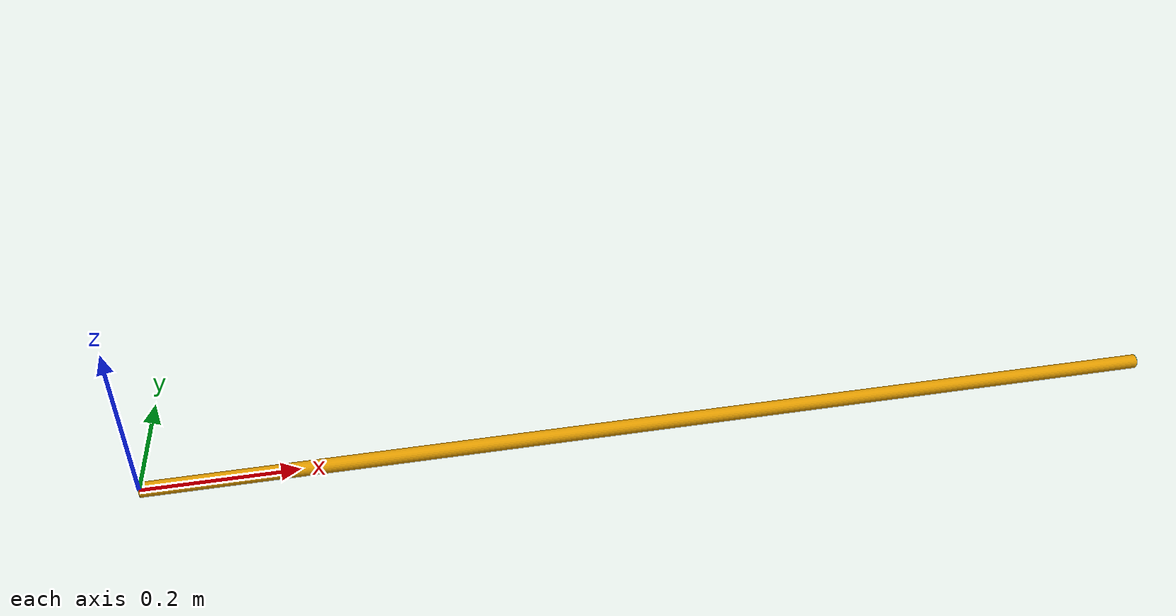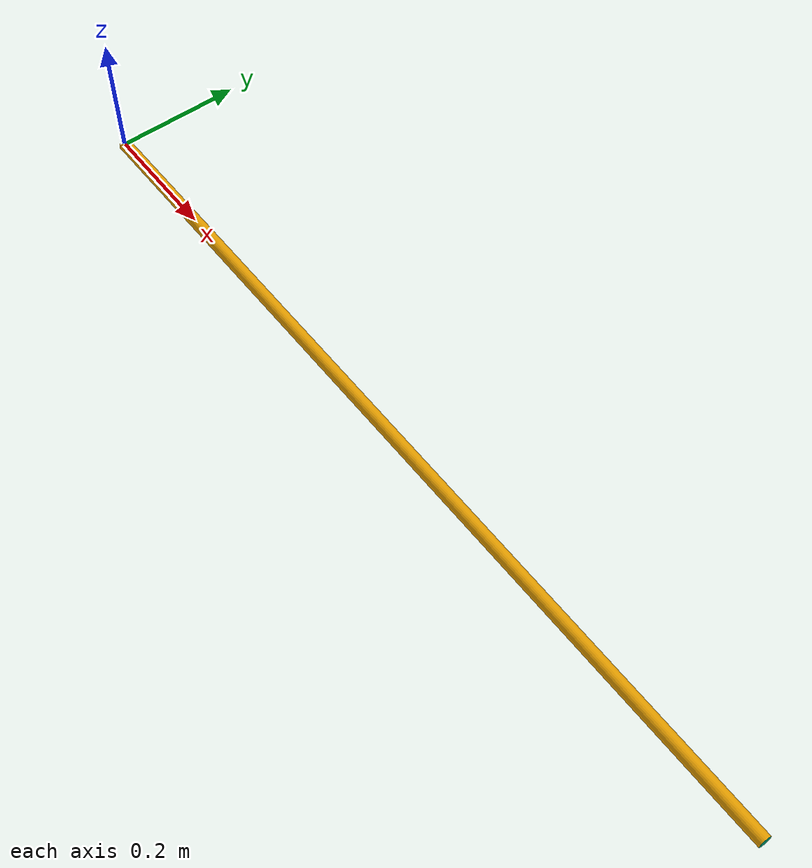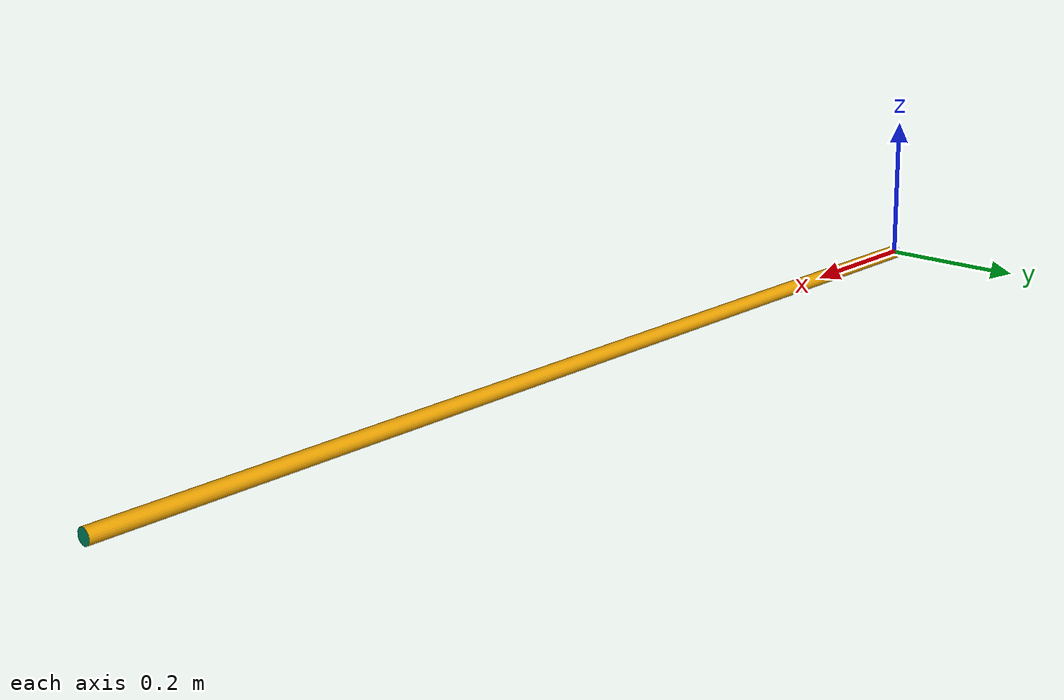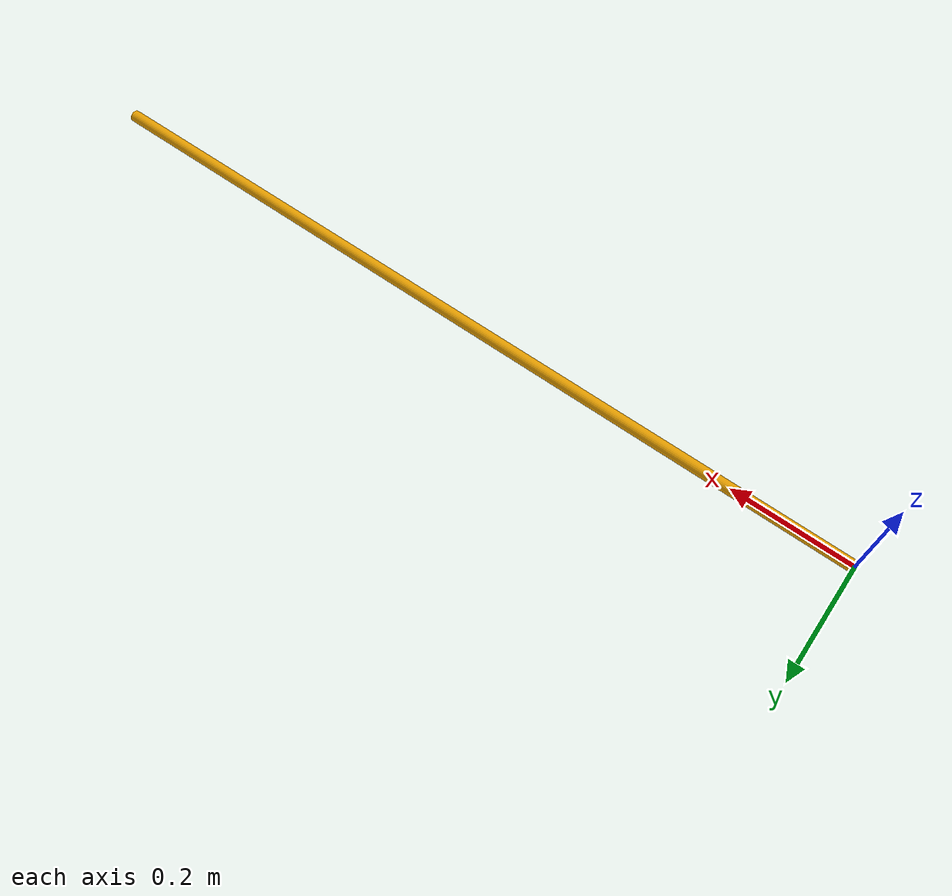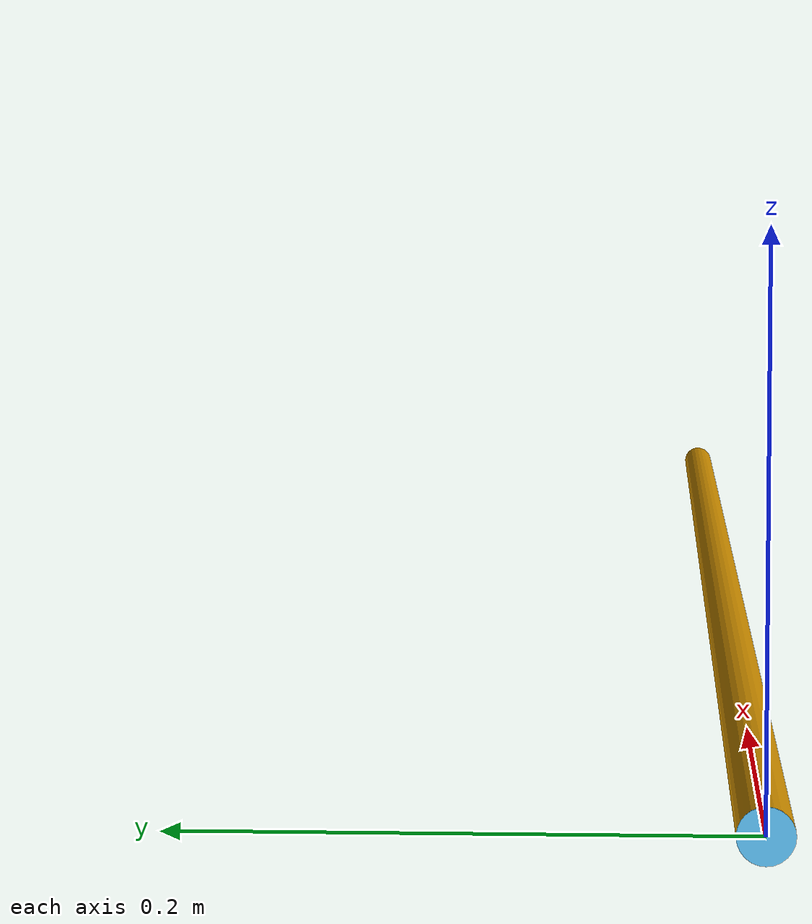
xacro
<?xml version="1.0" ?>
<robot name="tether" xmlns:xacro="http://ros.org/wiki/xacro">
    <!-- Xacro to generate tether SDF -->

    <!-- Define properties -->
    <xacro:property name="dist_connect_points" value="1.4" />
    <xacro:property name="tether_radius" value="0.01" />
    <xacro:property name="tether_mass" value="0.02" />
    <xacro:property name="num_elements" value="1" />

    <xacro:property name="elem_length_ends" value="0.0001" />
    <xacro:property name="elem_mass_main" value="${tether_mass/num_elements}" />
    <xacro:property name="elem_mass_ends" value="0.0001" />

    <xacro:property name="joint_friction" value="0" />
    <xacro:property name="joint_damping" value="0.01" />

    <!-- Calculations -->
    <xacro:property name="elem_length_main" value="${(((dist_connect_points**2)/2)*(1-cos(ang_e)))**0.5}"/>
    <xacro:property name="ang_e" value="${pi/num_elements}"/>
    <xacro:property name="ang_i" value="${pi - ang_e}"/>

    <!-- Define link macro -->
    <xacro:macro name="tether_element" params="elem_name elem_length elem_mass">
        <link name="${elem_name}">
            <inertial>
                <origin xyz="${elem_length/2} 0 0" rpy="0 ${pi/2} 0" />
                <mass value="${elem_mass}"/>
                <inertia ixx="${1/12*elem_mass*(3*tether_radius**2 + elem_length**2)}" ixy="0" ixz="0" iyy="${1/12*elem_mass*(3*tether_radius**2 + elem_length**2)}" iyz="0" izz="${1/2*elem_mass*(tether_radius**2)}" />
            </inertial>
            <visual>
                <origin xyz="${elem_length/2} 0 0" rpy="0 ${pi/2} 0" />
                <geometry>
                    <cylinder length="${elem_length}" radius="${tether_radius}"/>
                </geometry>
            </visual>
        </link>
    </xacro:macro>

    <!-- Recursive loop to generate multiple elements and joints for said elements -->
    <xacro:macro name="generate_tether" params="elem_num">
        <!-- Generate elements and recurse-->
        <xacro:tether_element elem_name="element_${elem_num}" elem_length="${elem_length_main}" elem_mass="${elem_mass_main}" />

        <xacro:if value="${elem_num-1}">
            <xacro:generate_tether elem_num="${elem_num-1}" />
        </xacro:if>

        <!-- Define joints -->
        <xacro:if value="${elem_num-1 > 0}">
            <joint name="joint_${elem_num-1}_to_${elem_num}" type="continuous">
                <axis xyz="0. 1. 0."/>

                <origin xyz="${elem_length_main} 0 0" rpy="0 ${-ang_e} 0"/>

                <parent link="element_${elem_num-1}"/>
                <child link="element_${elem_num}"/>

                <dynamics damping="${joint_damping}" friction="${joint_friction}"/>
            </joint>

        </xacro:if>

    </xacro:macro>

    <!-- Call recursive loop to generate tether -->
    <xacro:generate_tether elem_num="${num_elements}" />

    <!-- Add start and end elements and joints-->
    <xacro:tether_element elem_name="element_first" elem_length="${elem_length_ends}" elem_mass="${elem_mass_ends}" />
    <xacro:tether_element elem_name="element_last" elem_length="${elem_length_ends}" elem_mass="${elem_mass_ends}" />

    <!-- Prismatic joints may or may not be useful. First is for tension modelling, second is for attempting to remove radial cable forces-->
    <xacro:tether_element elem_name="element_p1" elem_length="${elem_length_ends}" elem_mass="${elem_mass_ends}" />
    <xacro:tether_element elem_name="element_p2" elem_length="${elem_length_ends}" elem_mass="${elem_mass_ends}" />
    <xacro:tether_element elem_name="element_p3" elem_length="${elem_length_ends}" elem_mass="${elem_mass_ends}" />

    <!-- Load-side ball joint -->
    <joint name="joint_0_to_p1" type="continuous">
        <axis xyz="0. 1. 0."/>
        <origin xyz="${elem_length_ends} 0 0" rpy="0 ${ang_i/2} 0"/>
        <parent link="element_first"/>
        <child link="element_p1"/>
        <dynamics damping="${joint_damping}" friction="${joint_friction}"/>
    </joint>

    <!-- Prismatic joints (controlling tension direction) -->
    <joint name="joint_p1_to_p2" type="prismatic">
        <origin xyz="${elem_length_ends} 0 0" rpy="0 0 0"/>
        <parent link="element_p1"/>
        <child link="element_p2"/>
        <axis xyz="1. 0. 0."/>
        <dynamics damping="0.0" friction="0.0"/>
        <limit lower="-1.0" upper="0.0" effort="10000.0" velocity="10000.0"/>
    </joint>

    <joint name="joint_p2_to_p3" type="prismatic">
        <origin xyz="${elem_length_ends} 0 0" rpy="0 0 0"/>
        <parent link="element_p2"/>
        <child link="element_p3"/>
        <axis xyz="0. 1. 0."/>
        <dynamics damping="0.0" friction="0.0"/>
        <limit lower="-0.1" upper="0.1" effort="10000.0" velocity="10000.0"/>
    </joint>

    <joint name="joint_p3_to_1" type="prismatic">
        <origin xyz="${elem_length_ends} 0 0" rpy="0 0 0"/>
        <parent link="element_p3"/>
        <child link="element_1"/>
        <axis xyz="0. 0. 1."/>
        <dynamics damping="0.0" friction="0.0"/>
        <limit lower="-0.1" upper="0.1" effort="10000.0" velocity="10000.0"/>
    </joint>

    <!-- Drone-side ball joint -->
    <joint name="joint_${num_elements}_to_${num_elements+1}" type="continuous">
        <axis xyz="0. 1. 0."/>
        <origin xyz="${elem_length_main} 0 0" rpy="0 ${(pi-ang_e)/2} 0"/>
        <parent link="element_${num_elements}"/>
        <child link="element_last"/>
        <dynamics damping="${joint_damping}" friction="${joint_friction}"/>
    </joint>

</robot>
